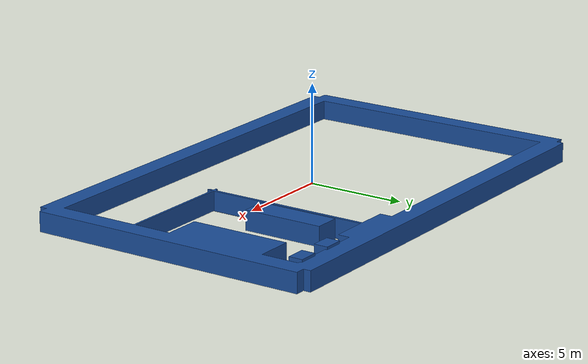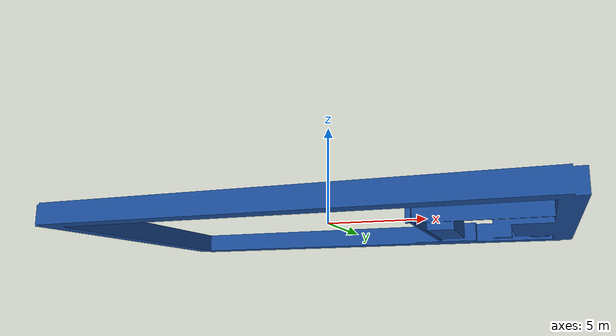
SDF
<?xml version="1.0" ?>
<sdf version="1.9">
  <model name="factory_floor">

    <!-- Makes the walls immovable so the robot can bump into them -->
    <static>true</static>

    <link name="walls_link">

     <!-- Visual geometry -->
      <visual name="walls_visual">
        <geometry>
          <mesh>
            <uri>model://factory_floor/meshes/floor_layout.stl</uri>
          </mesh>
        </geometry>
        <!-- ADD THIS MATERIAL BLOCK -->
        <material>
          <ambient>0.1 0.3 0.6 1.0</ambient>
          <diffuse>0.1 0.3 0.6 1.0</diffuse>
          <specular>0.1 0.1 0.1 1.0</specular>
        </material>
      </visual>

      <!-- Collision geometry -->
      <collision name="walls_collision">
        <geometry>
          <mesh>
            <uri>model://factory_floor/meshes/floor_layout.stl</uri>
          </mesh>
        </geometry>
      </collision>

    </link>
  </model>
</sdf>
